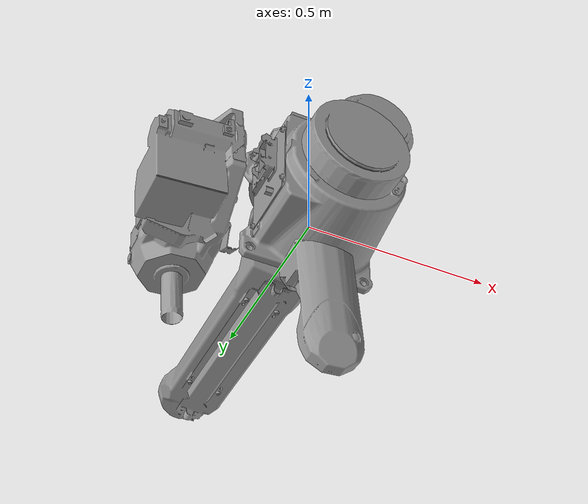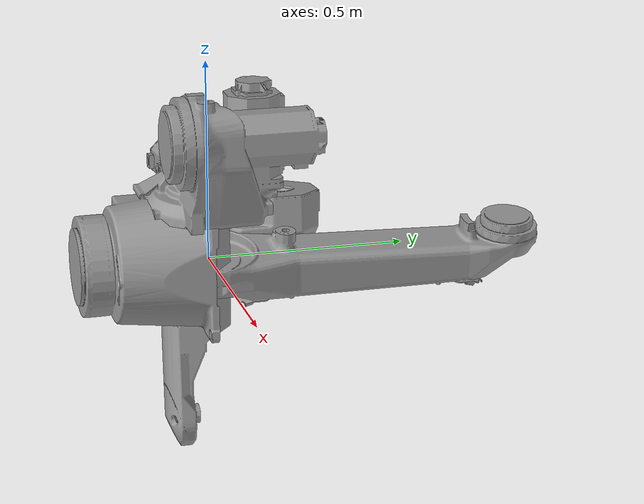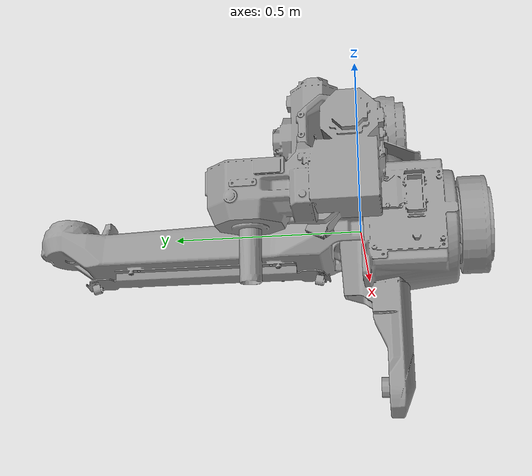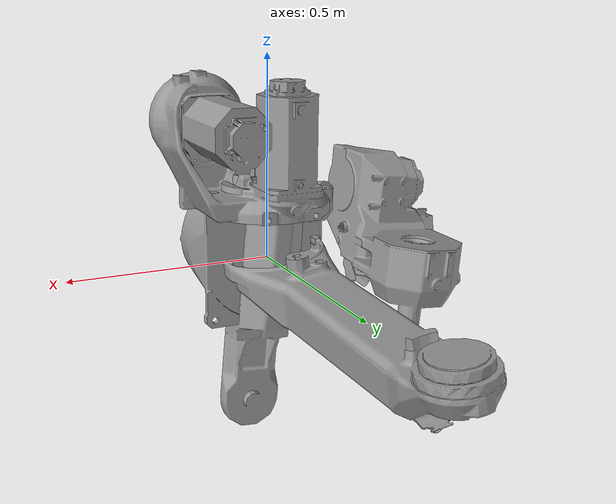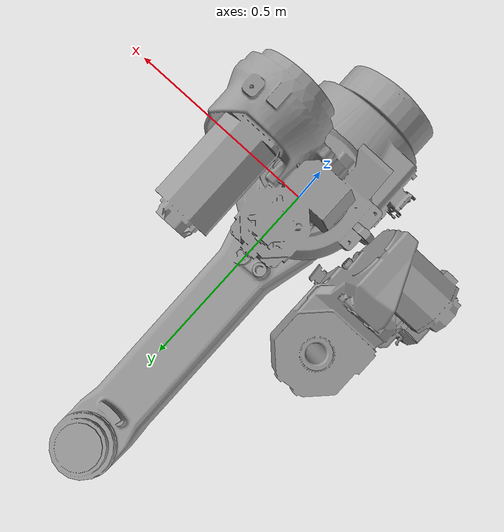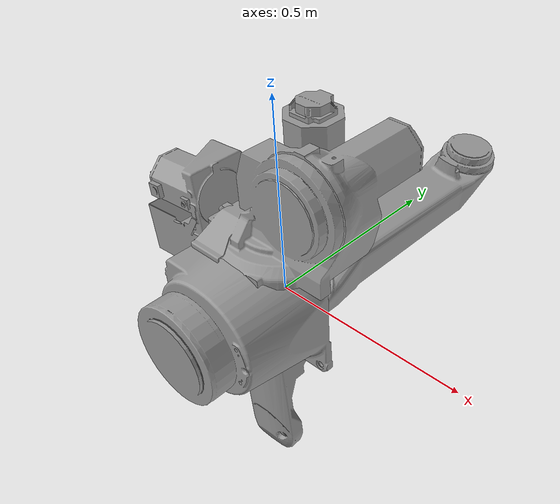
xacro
<?xml version="1.0"?>
<robot
    xmlns:xacro="https://www.ros.org/wiki/xacro">

    <link
        name="base_link">
        <inertial>
            <origin
                xyz="-0.00473641164191482 2.56829134630247E-05 0.041451518036016"
                rpy="0 0 0" />
            <mass
                value="1.02" />
            <inertia
                ixx="0.00267433"
                ixy="-0.00000073"
                ixz="-0.00017389"
                iyy="0.00282612"
                iyz="0.0000004"
                izz="0.00089624" />
        </inertial>
        <visual>
            <origin
                xyz="0 0 0"
                rpy="0 0 0" />
            <geometry>
                <mesh
                filename="package://my_robot_description/meshes/base_link.STL" />
            </geometry>
            <material
                name="grey" />
        </visual>
        <collision>
            <origin
                xyz="0 0 0"
                rpy="0 0 0" />
            <geometry>
                <mesh
                filename="package://my_robot_description/meshes/base_link.STL" />
            </geometry>
        </collision>
    </link>

    <link
        name="link1">
        <inertial>
            <origin
                xyz="0.000121504734057468 0.000104632162460536 -0.00438597309559853"
                rpy="0 0 0" />
            <mass
                value="0.71" />
            <inertia
                ixx="0.00048916"
                ixy="-0.00000036"
                ixz="-0.00000224"
                iyy="0.00040472"
                iyz="-0.00000242"
                izz="0.00043982" />
        </inertial>
        <visual>
            <origin
                xyz="0 0 0"
                rpy="0 0 0" />
            <geometry>
                <mesh
                filename="package://my_robot_description/meshes/link1.STL" />
            </geometry>
            <material
                name="grey" />
        </visual>
        <collision>
            <origin
                xyz="0 0 0"
                rpy="0 0 0" />
            <geometry>
                <mesh
                filename="package://my_robot_description/meshes/link1.STL" />
            </geometry>
        </collision>
    </link>
    <joint
        name="joint1"
        type="revolute">
        <origin
            xyz="0 0 0.123"
            rpy="0 0 0" />
        <parent
            link="base_link" />
        <child
            link="link1" />
        <axis
            xyz="0 0 1" />
        <limit
            lower="-2.618"
            upper="2.168"
            effort="100"
            velocity="5" />
    </joint>
    <link
        name="link2">
        <inertial>
            <origin
                xyz="0.198666145229743 -0.010926924140076 0.00142121714502687"
                rpy="0 0 0" />
            <mass
                value="1.17" />
            <inertia
                ixx="0.00116918"
                ixy="-0.00180037"
                ixz="0.00025146"
                iyy="0.06785384"
                iyz="-0.00000455"
                izz="0.06774489" />
        </inertial>
        <visual>
            <origin
                xyz="0 0 0"
                rpy="0 0 0" />
            <geometry>
                <mesh
                filename="package://my_robot_description/meshes/link2.STL" />
            </geometry>
            <material
                name="grey" />
        </visual>
        <collision>
            <origin
                xyz="0 0 0"
                rpy="0 0 0" />
            <geometry>
                <mesh
                filename="package://my_robot_description/meshes/link2.STL" />
            </geometry>
        </collision>
    </link>
    <joint
        name="joint2"
        type="revolute">
        <origin
            xyz="0 0 0"
            rpy="1.5708 -0.1359 -3.1416" />
        <parent
            link="link1" />
        <child
            link="link2" />
        <axis
            xyz="0 0 1" />
        <limit
            lower="0"
            upper="3.14"
            effort="100"
            velocity="5" />
    </joint>
    <link
        name="link3">
        <inertial>
            <origin
                xyz="-0.0202737662122021 -0.133914995944595 -0.000458682652737356"
                rpy="0 0 0" />
            <mass
                value="0.5" />
            <inertia
                ixx="0.01361711"
                ixy="0.00165794"
                ixz="-0.00000048"
                iyy="0.00045024"
                iyz="-0.00000045"
                izz="0.01380322" />
        </inertial>
        <visual>
            <origin
                xyz="0 0 0"
                rpy="0 0 0" />
            <geometry>
                <mesh
                filename="package://my_robot_description/meshes/link3.STL" />
            </geometry>
            <material
                name="grey" />
        </visual>
        <collision>
            <origin
                xyz="0 0 0"
                rpy="0 0 0" />
            <geometry>
                <mesh
                filename="package://my_robot_description/meshes/link3.STL" />
            </geometry>
        </collision>
    </link>
    <joint
        name="joint3"
        type="revolute">
        <origin
            xyz="0.28503 0 0"
            rpy="0 0 -1.7939" />
        <parent
            link="link2" />
        <child
            link="link3" />
        <axis
            xyz="0 0 1" />
        <limit
            lower="-2.967"
            upper="0"
            effort="100"
            velocity="5" />
    </joint>
    <link
        name="link4">
        <inertial>
        <origin
            xyz="-9.66635791618542E-05 0.000876064475651083 -0.00496880904640868"
            rpy="0 0 0" />
        <mass
            value="0.38" />
        <inertia
            ixx="0.00018501"
            ixy="0.00000054"
            ixz="0.00000120"
            iyy="0.00018965"
            iyz="-0.00000841"
            izz="0.00015484" />
        </inertial>
        <visual>
            <origin
                xyz="0 0 0"
                rpy="0 0 0" />
            <geometry>
                <mesh
                filename="package://my_robot_description/meshes/link4.STL" />
            </geometry>
            <material
                name="grey" />
        </visual>
        <collision>
            <origin
                xyz="0 0 0"
                rpy="0 0 0" />
            <geometry>
                <mesh
                filename="package://my_robot_description/meshes/link4.STL" />
            </geometry>
        </collision>
    </link>
    <joint
        name="joint4"
        type="revolute">
        <origin
            xyz="-0.021984 -0.25075 0"
            rpy="1.5708 0 0" />
        <parent
            link="link3" />
        <child
            link="link4" />
        <axis
            xyz="0 0 1" />
        <limit
            lower="-1.745"
            upper="1.745"
            effort="100"
            velocity="5" />
    </joint>
    <link
        name="link5">
        <inertial>
            <origin
                xyz="-4.10554118924211E-05 -0.0566486692356075 -0.0037205791677906"
                rpy="0 0 0" />
            <mass
                value="0.383" />
            <inertia
                ixx="0.00166169"
                ixy="0.00000006"
                ixz="-0.00000007"
                iyy="0.00018510"
                iyz="0.00001026"
                izz="0.00164321" />
        </inertial>
        <visual>
            <origin
                xyz="0 0 0"
                rpy="0 0 0" />
            <geometry>
                <mesh
                filename="package://my_robot_description/meshes/link5.STL" />
            </geometry>
            <material
                name="grey" />
        </visual>
        <collision>
            <origin
                xyz="0 0 0"
                rpy="0 0 0" />
            <geometry>
                <mesh
                filename="package://my_robot_description/meshes/link5.STL" />
            </geometry>
        </collision>
    </link>
    <joint
        name="joint5"
        type="revolute">
        <origin
            xyz="0 0 0"
            rpy="-1.5708 0 0" />
        <parent
            link="link4" />
        <child
            link="link5" />
        <axis
            xyz="0 0 1" />
        <limit
            lower="-1.22"
            upper="1.22"
            effort="100"
            velocity="5" />
    </joint>
    <link
        name="link6">
        <inertial>
            <origin
                xyz="-8.82590762930069E-05 9.0598378529832E-06 -0.002"
                rpy="0 0 0" />
            <mass
                value="0.007" />
            <inertia
                ixx="5.73015540542155E-07"
                ixy="-1.98305403089247E-22"
                ixz="-7.2791893904596E-23"
                iyy="5.73015540542155E-07"
                iyz="-3.4146026640245E-24"
                izz="1.06738869138926E-06" />
        </inertial>
        <visual>
            <origin
                xyz="0 0 0"
                rpy="0 0 0" />
            <geometry>
                <mesh
                filename="package://my_robot_description/meshes/link6.STL" />
            </geometry>
            <material
                name="grey" />
        </visual>
        <collision>
            <origin
                xyz="0 0 0"
                rpy="0 0 0" />
            <geometry>
                <mesh
                filename="package://my_robot_description/meshes/link6.STL" />
            </geometry>
        </collision>
    </link>
    <joint
        name="joint6"
        type="revolute">
        <origin
            xyz="8.8259E-05 -0.091 0"
            rpy="1.5708 0 0" />
        <parent
            link="link5" />
        <child
            link="link6" />
        <axis
            xyz="0 0 1" />
        <limit
            lower="-2.0944"
            upper="2.0944"
            effort="100"
            velocity="3" />
    </joint>
    <link
        name="tool_link" />

    <joint
        name="hand_tool_joint"
        type="fixed">
        <origin
            xyz="0 0 0"
            rpy="0 -1.5707963 0" />
        <parent
            link="link6" />
        <child
            link="tool_link" />
    </joint>
</robot>
